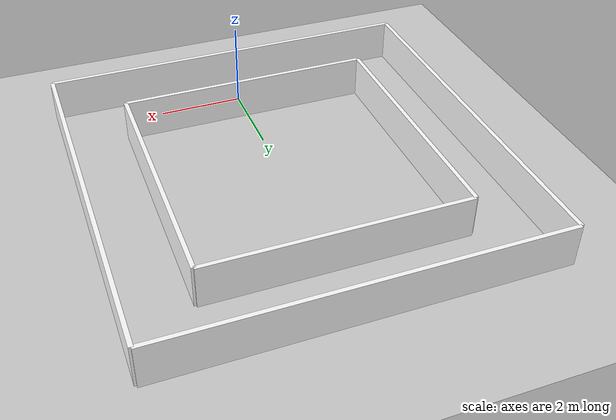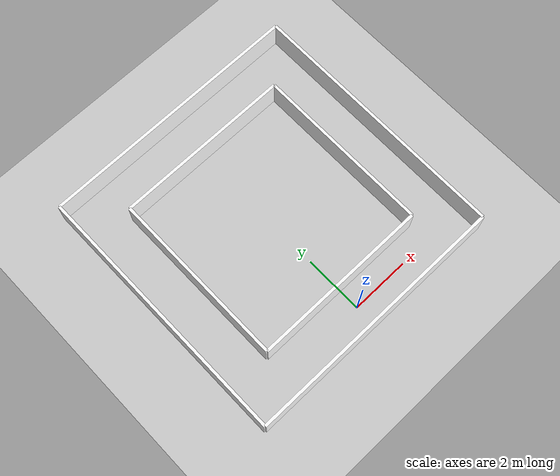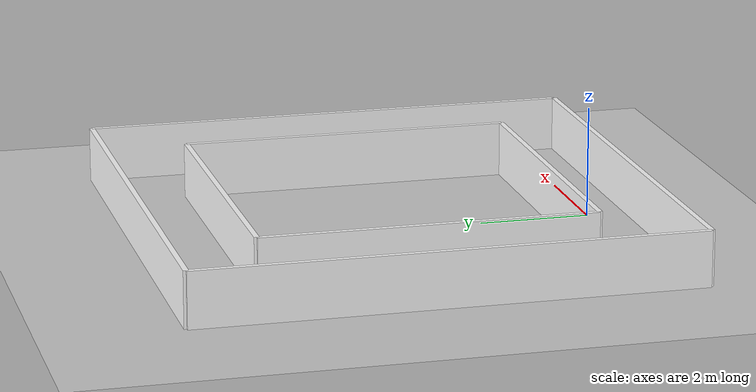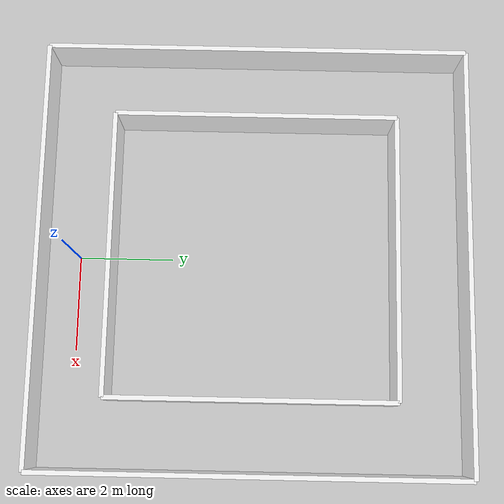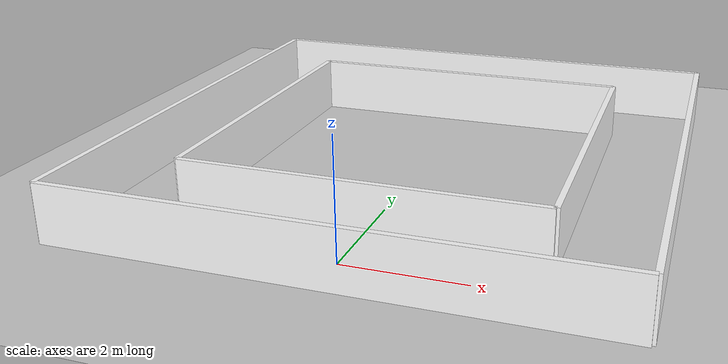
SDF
<?xml version="1.0" ?>
<sdf version="1.6">
  <world name="circuito_cuadrado">
    <!-- Configuración del entorno -->
    <include>
      <uri>model://sun</uri>
    </include>
    <include>
      <uri>model://ground_plane</uri>
    </include>

    <!-- Pared izquierda -->
    <model name="wall_left_int">
      <static>true</static>
      <link name="link">
        <visual name="visual">
          <geometry>
            <box>
              <size>6 0.1 1</size> <!-- Largo x Ancho x Altura -->
            </box>
          </geometry>
          <material>
            <ambient>1 1 1 1</ambient> <!-- Pared blanca -->
          </material>
        </visual>
        <collision name="collision">
          <geometry>
            <box>
              <size>6 0.1 1</size>
            </box>
          </geometry>
        </collision>
      </link>
      <pose>-3 3.75 0.5 0 0 1.5708</pose> <!-- Ubicación de la pared -->
    </model>

    <!-- Pared derecha -->
    <model name="wall_right_int">
      <static>true</static>
      <link name="link">
        <visual name="visual">
          <geometry>
            <box>
              <size>6 0.1 1</size>
            </box>
          </geometry>
          <material>
            <ambient>1 1 1 1</ambient>
          </material>
        </visual>
        <collision name="collision">
          <geometry>
            <box>
              <size>6 0.1 1</size>
            </box>
          </geometry>
        </collision>
      </link>
      <pose>3 3.75 0.5 0 0 1.5708</pose> <!-- Ubicación de la pared -->
    </model>

    <!-- Pared superior -->
    <model name="wall_top_int">
      <static>true</static>
      <link name="link">
        <visual name="visual">
          <geometry>
            <box>
              <size>6 0.1 1</size>
            </box>
          </geometry>
          <material>
            <ambient>1 1 1 1</ambient>
          </material>
        </visual>
        <collision name="collision">
          <geometry>
            <box>
              <size>6 0.1 1</size>
            </box>
          </geometry>
        </collision>
      </link>
      <pose>0 6.75 0.5 0 0 0</pose> <!-- Ubicación de la pared -->
    </model>

    <!-- Pared inferior -->
    <model name="wall_bottom_int">
      <static>true</static>
      <link name="link">
        <visual name="visual">
          <geometry>
            <box>
              <size>6 0.1 1</size>
            </box>
          </geometry>
          <material>
            <ambient>1 1 1 1</ambient>
          </material>
        </visual>
        <collision name="collision">
          <geometry>
            <box>
              <size>6 0.1 1</size>
            </box>
          </geometry>
        </collision>
      </link>
      <pose>0 0.75 0.5 0 0 0</pose> <!-- Ubicación de la pared -->
    </model>

    <!-- Conectar las paredes para formar el circuito -->
 <!-- Pared izquierda -->
    <model name="wall_left_ext">
      <static>true</static>
      <link name="link">
        <visual name="visual">
          <geometry>
            <box>
              <size>9 0.1 1</size> <!-- Largo x Ancho x Altura -->
            </box>
          </geometry>
          <material>
            <ambient>1 1 1 1</ambient> <!-- Pared blanca -->
          </material>
        </visual>
        <collision name="collision">
          <geometry>
            <box>
              <size>9 0.1 1</size>
            </box>
          </geometry>
        </collision>
      </link>
      <pose>-4.5 3.75 0.5 0 0 1.5708</pose> <!-- Ubicación de la pared -->
    </model>

    <!-- Pared derecha -->
    <model name="wall_right_ext">
      <static>true</static>
      <link name="link">
        <visual name="visual">
          <geometry>
            <box>
              <size>9 0.1 1</size>
            </box>
          </geometry>
          <material>
            <ambient>1 1 1 1</ambient>
          </material>
        </visual>
        <collision name="collision">
          <geometry>
            <box>
              <size>9 0.1 1</size>
            </box>
          </geometry>
        </collision>
      </link>
      <pose>4.5 3.75 0.5 0 0 1.5708</pose> <!-- Ubicación de la pared -->
    </model>

    <!-- Pared superior -->
    <model name="wall_top_ext">
      <static>true</static>
      <link name="link">
        <visual name="visual">
          <geometry>
            <box>
              <size>9 0.1 1</size>
            </box>
          </geometry>
          <material>
            <ambient>1 1 1 1</ambient>
          </material>
        </visual>
        <collision name="collision">
          <geometry>
            <box>
              <size>9 0.1 1</size>
            </box>
          </geometry>
        </collision>
      </link>
      <pose>0 8.25 0.5 0 0 0</pose> <!-- Ubicación de la pared -->
    </model>

    <!-- Pared inferior -->
    <model name="wall_bottom_ext">
      <static>true</static>
      <link name="link">
        <visual name="visual">
          <geometry>
            <box>
              <size>9 0.1 1</size>
            </box>
          </geometry>
          <material>
            <ambient>1 1 1 1</ambient>
          </material>
        </visual>
        <collision name="collision">
          <geometry>
            <box>
              <size>9 0.1 1</size>
            </box>
          </geometry>
        </collision>
      </link>
      <pose>0 -0.75 0.5 0 0 0</pose> <!-- Ubicación de la pared -->
    </model>

  </world>
</sdf>
